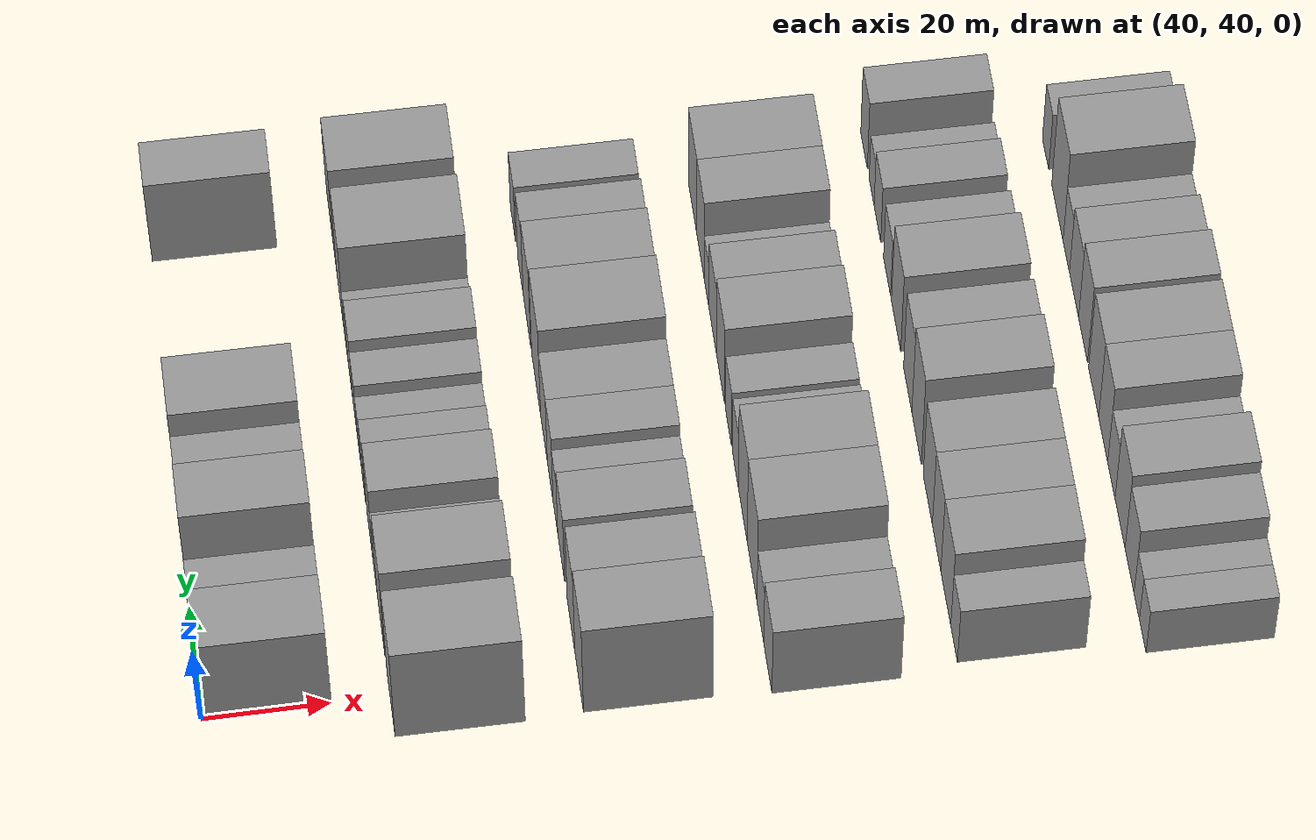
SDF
<sdf version="1.6">
 <world name="default">
  <model name="building_62">
   <static>1</static>
   <pose>50.0000 45.1729 0 0.000000 0.000000 0.000000</pose>
   <link name="link">
    <pose>0 0 10.50 0 0 0</pose>
    <collision name="collision"><geometry><box><size>20.0000 10.4034 21.0000</size></box></geometry></collision>
    <visual name="visual">
     <cast_shadows>0</cast_shadows>
     <geometry><box><size>20.0000 10.4034 21.0000</size></box></geometry>
     <material>
      <script>
       <uri>model://grey_wall/materials/scripts</uri>
       <uri>model://grey_wall/materials/textures</uri>
       <name>vrc/grey_wall</name>
      </script>
     </material>
    </visual>
   </link>
  </model>
  <model name="building_63">
   <static>1</static>
   <pose>50.0000 56.3753 0 0.000000 0.000000 0.000000</pose>
   <link name="link">
    <pose>0 0 7.50 0 0 0</pose>
    <collision name="collision"><geometry><box><size>20.0000 6.0014 15.0000</size></box></geometry></collision>
    <visual name="visual">
     <cast_shadows>0</cast_shadows>
     <geometry><box><size>20.0000 6.0014 15.0000</size></box></geometry>
     <material>
      <script>
       <uri>model://grey_wall/materials/scripts</uri>
       <uri>model://grey_wall/materials/textures</uri>
       <name>vrc/grey_wall</name>
      </script>
     </material>
    </visual>
   </link>
  </model>
  <model name="building_64">
   <static>1</static>
   <pose>50.0000 66.2069 0 0.000000 0.000000 0.000000</pose>
   <link name="link">
    <pose>0 0 12.00 0 0 0</pose>
    <collision name="collision"><geometry><box><size>20.0000 9.6620 24.0000</size></box></geometry></collision>
    <visual name="visual">
     <cast_shadows>0</cast_shadows>
     <geometry><box><size>20.0000 9.6620 24.0000</size></box></geometry>
     <material>
      <script>
       <uri>model://grey_wall/materials/scripts</uri>
       <uri>model://grey_wall/materials/textures</uri>
       <name>vrc/grey_wall</name>
      </script>
     </material>
    </visual>
   </link>
  </model>
  <model name="building_65">
   <static>1</static>
   <pose>50.0000 75.9701 0 0.000000 0.000000 0.000000</pose>
   <link name="link">
    <pose>0 0 9.00 0 0 0</pose>
    <collision name="collision"><geometry><box><size>20.0000 7.8644 18.0000</size></box></geometry></collision>
    <visual name="visual">
     <cast_shadows>0</cast_shadows>
     <geometry><box><size>20.0000 7.8644 18.0000</size></box></geometry>
     <material>
      <script>
       <uri>model://grey_wall/materials/scripts</uri>
       <uri>model://grey_wall/materials/textures</uri>
       <name>vrc/grey_wall</name>
      </script>
     </material>
    </visual>
   </link>
  </model>
  <model name="building_66">
   <static>1</static>
   <pose>50.0000 85.2618 0 0.000000 0.000000 0.000000</pose>
   <link name="link">
    <pose>0 0 12.00 0 0 0</pose>
    <collision name="collision"><geometry><box><size>20.0000 10.7190 24.0000</size></box></geometry></collision>
    <visual name="visual">
     <cast_shadows>0</cast_shadows>
     <geometry><box><size>20.0000 10.7190 24.0000</size></box></geometry>
     <material>
      <script>
       <uri>model://grey_wall/materials/scripts</uri>
       <uri>model://grey_wall/materials/textures</uri>
       <name>vrc/grey_wall</name>
      </script>
     </material>
    </visual>
   </link>
  </model>
  <model name="building_67">
   <static>1</static>
   <pose>50.0000 129.2754 0 0.000000 0.000000 0.000000</pose>
   <link name="link">
    <pose>0 0 10.50 0 0 0</pose>
    <collision name="collision"><geometry><box><size>20.0000 8.4361 21.0000</size></box></geometry></collision>
    <visual name="visual">
     <cast_shadows>0</cast_shadows>
     <geometry><box><size>20.0000 8.4361 21.0000</size></box></geometry>
     <material>
      <script>
       <uri>model://grey_wall/materials/scripts</uri>
       <uri>model://grey_wall/materials/textures</uri>
       <name>vrc/grey_wall</name>
      </script>
     </material>
    </visual>
   </link>
  </model>
  <model name="building_174">
   <static>1</static>
   <pose>79.0000 38.6088 0 0.000000 0.000000 0.000000</pose>
   <link name="link">
    <pose>0 0 12.00 0 0 0</pose>
    <collision name="collision"><geometry><box><size>20.0000 11.4685 24.0000</size></box></geometry></collision>
    <visual name="visual">
     <cast_shadows>0</cast_shadows>
     <geometry><box><size>20.0000 11.4685 24.0000</size></box></geometry>
     <material>
      <script>
       <uri>model://grey_wall/materials/scripts</uri>
       <uri>model://grey_wall/materials/textures</uri>
       <name>vrc/grey_wall</name>
      </script>
     </material>
    </visual>
   </link>
  </model>
  <model name="building_175">
   <static>1</static>
   <pose>79.0000 52.6056 0 0.000000 0.000000 0.000000</pose>
   <link name="link">
    <pose>0 0 12.00 0 0 0</pose>
    <collision name="collision"><geometry><box><size>20.0000 10.5251 24.0000</size></box></geometry></collision>
    <visual name="visual">
     <cast_shadows>0</cast_shadows>
     <geometry><box><size>20.0000 10.5251 24.0000</size></box></geometry>
     <material>
      <script>
       <uri>model://grey_wall/materials/scripts</uri>
       <uri>model://grey_wall/materials/textures</uri>
       <name>vrc/grey_wall</name>
      </script>
     </material>
    </visual>
   </link>
  </model>
  <model name="building_176">
   <static>1</static>
   <pose>79.0000 60.9086 0 0.000000 0.000000 0.000000</pose>
   <link name="link">
    <pose>0 0 7.50 0 0 0</pose>
    <collision name="collision"><geometry><box><size>20.0000 6.0808 15.0000</size></box></geometry></collision>
    <visual name="visual">
     <cast_shadows>0</cast_shadows>
     <geometry><box><size>20.0000 6.0808 15.0000</size></box></geometry>
     <material>
      <script>
       <uri>model://grey_wall/materials/scripts</uri>
       <uri>model://grey_wall/materials/textures</uri>
       <name>vrc/grey_wall</name>
      </script>
     </material>
    </visual>
   </link>
  </model>
  <model name="building_177">
   <static>1</static>
   <pose>79.0000 68.3858 0 0.000000 0.000000 0.000000</pose>
   <link name="link">
    <pose>0 0 10.50 0 0 0</pose>
    <collision name="collision"><geometry><box><size>20.0000 8.8737 21.0000</size></box></geometry></collision>
    <visual name="visual">
     <cast_shadows>0</cast_shadows>
     <geometry><box><size>20.0000 8.8737 21.0000</size></box></geometry>
     <material>
      <script>
       <uri>model://grey_wall/materials/scripts</uri>
       <uri>model://grey_wall/materials/textures</uri>
       <name>vrc/grey_wall</name>
      </script>
     </material>
    </visual>
   </link>
  </model>
  <model name="building_178">
   <static>1</static>
   <pose>79.0000 77.9151 0 0.000000 0.000000 0.000000</pose>
   <link name="link">
    <pose>0 0 7.50 0 0 0</pose>
    <collision name="collision"><geometry><box><size>20.0000 6.1849 15.0000</size></box></geometry></collision>
    <visual name="visual">
     <cast_shadows>0</cast_shadows>
     <geometry><box><size>20.0000 6.1849 15.0000</size></box></geometry>
     <material>
      <script>
       <uri>model://grey_wall/materials/scripts</uri>
       <uri>model://grey_wall/materials/textures</uri>
       <name>vrc/grey_wall</name>
      </script>
     </material>
    </visual>
   </link>
  </model>
  <model name="building_179">
   <static>1</static>
   <pose>79.0000 84.6122 0 0.000000 0.000000 0.000000</pose>
   <link name="link">
    <pose>0 0 6.00 0 0 0</pose>
    <collision name="collision"><geometry><box><size>20.0000 5.2093 12.0000</size></box></geometry></collision>
    <visual name="visual">
     <cast_shadows>0</cast_shadows>
     <geometry><box><size>20.0000 5.2093 12.0000</size></box></geometry>
     <material>
      <script>
       <uri>model://grey_wall/materials/scripts</uri>
       <uri>model://grey_wall/materials/textures</uri>
       <name>vrc/grey_wall</name>
      </script>
     </material>
    </visual>
   </link>
  </model>
  <model name="building_180">
   <static>1</static>
   <pose>79.0000 90.4151 0 0.000000 0.000000 0.000000</pose>
   <link name="link">
    <pose>0 0 7.50 0 0 0</pose>
    <collision name="collision"><geometry><box><size>20.0000 6.3964 15.0000</size></box></geometry></collision>
    <visual name="visual">
     <cast_shadows>0</cast_shadows>
     <geometry><box><size>20.0000 6.3964 15.0000</size></box></geometry>
     <material>
      <script>
       <uri>model://grey_wall/materials/scripts</uri>
       <uri>model://grey_wall/materials/textures</uri>
       <name>vrc/grey_wall</name>
      </script>
     </material>
    </visual>
   </link>
  </model>
  <model name="building_181">
   <static>1</static>
   <pose>79.0000 97.4869 0 0.000000 0.000000 0.000000</pose>
   <link name="link">
    <pose>0 0 9.00 0 0 0</pose>
    <collision name="collision"><geometry><box><size>20.0000 7.7473 18.0000</size></box></geometry></collision>
    <visual name="visual">
     <cast_shadows>0</cast_shadows>
     <geometry><box><size>20.0000 7.7473 18.0000</size></box></geometry>
     <material>
      <script>
       <uri>model://grey_wall/materials/scripts</uri>
       <uri>model://grey_wall/materials/textures</uri>
       <name>vrc/grey_wall</name>
      </script>
     </material>
    </visual>
   </link>
  </model>
  <model name="building_182">
   <static>1</static>
   <pose>79.0000 104.2243 0 0.000000 0.000000 0.000000</pose>
   <link name="link">
    <pose>0 0 6.00 0 0 0</pose>
    <collision name="collision"><geometry><box><size>20.0000 5.7274 12.0000</size></box></geometry></collision>
    <visual name="visual">
     <cast_shadows>0</cast_shadows>
     <geometry><box><size>20.0000 5.7274 12.0000</size></box></geometry>
     <material>
      <script>
       <uri>model://grey_wall/materials/scripts</uri>
       <uri>model://grey_wall/materials/textures</uri>
       <name>vrc/grey_wall</name>
      </script>
     </material>
    </visual>
   </link>
  </model>
  <model name="building_183">
   <static>1</static>
   <pose>79.0000 112.9127 0 0.000000 0.000000 0.000000</pose>
   <link name="link">
    <pose>0 0 12.00 0 0 0</pose>
    <collision name="collision"><geometry><box><size>20.0000 11.6494 24.0000</size></box></geometry></collision>
    <visual name="visual">
     <cast_shadows>0</cast_shadows>
     <geometry><box><size>20.0000 11.6494 24.0000</size></box></geometry>
     <material>
      <script>
       <uri>model://grey_wall/materials/scripts</uri>
       <uri>model://grey_wall/materials/textures</uri>
       <name>vrc/grey_wall</name>
      </script>
     </material>
    </visual>
   </link>
  </model>
  <model name="building_184">
   <static>1</static>
   <pose>79.0000 121.3632 0 0.000000 0.000000 0.000000</pose>
   <link name="link">
    <pose>0 0 6.00 0 0 0</pose>
    <collision name="collision"><geometry><box><size>20.0000 5.2517 12.0000</size></box></geometry></collision>
    <visual name="visual">
     <cast_shadows>0</cast_shadows>
     <geometry><box><size>20.0000 5.2517 12.0000</size></box></geometry>
     <material>
      <script>
       <uri>model://grey_wall/materials/scripts</uri>
       <uri>model://grey_wall/materials/textures</uri>
       <name>vrc/grey_wall</name>
      </script>
     </material>
    </visual>
   </link>
  </model>
  <model name="building_185">
   <static>1</static>
   <pose>79.0000 129.2382 0 0.000000 0.000000 0.000000</pose>
   <link name="link">
    <pose>0 0 10.50 0 0 0</pose>
    <collision name="collision"><geometry><box><size>20.0000 10.4982 21.0000</size></box></geometry></collision>
    <visual name="visual">
     <cast_shadows>0</cast_shadows>
     <geometry><box><size>20.0000 10.4982 21.0000</size></box></geometry>
     <material>
      <script>
       <uri>model://grey_wall/materials/scripts</uri>
       <uri>model://grey_wall/materials/textures</uri>
       <name>vrc/grey_wall</name>
      </script>
     </material>
    </visual>
   </link>
  </model>
  <model name="building_287">
   <static>1</static>
   <pose>108.0000 38.6370 0 0.000000 0.000000 0.000000</pose>
   <link name="link">
    <pose>0 0 12.00 0 0 0</pose>
    <collision name="collision"><geometry><box><size>20.0000 10.6828 24.0000</size></box></geometry></collision>
    <visual name="visual">
     <cast_shadows>0</cast_shadows>
     <geometry><box><size>20.0000 10.6828 24.0000</size></box></geometry>
     <material>
      <script>
       <uri>model://grey_wall/materials/scripts</uri>
       <uri>model://grey_wall/materials/textures</uri>
       <name>vrc/grey_wall</name>
      </script>
     </material>
    </visual>
   </link>
  </model>
  <model name="building_288">
   <static>1</static>
   <pose>108.0000 48.8752 0 0.000000 0.000000 0.000000</pose>
   <link name="link">
    <pose>0 0 10.50 0 0 0</pose>
    <collision name="collision"><geometry><box><size>20.0000 9.7936 21.0000</size></box></geometry></collision>
    <visual name="visual">
     <cast_shadows>0</cast_shadows>
     <geometry><box><size>20.0000 9.7936 21.0000</size></box></geometry>
     <material>
      <script>
       <uri>model://grey_wall/materials/scripts</uri>
       <uri>model://grey_wall/materials/textures</uri>
       <name>vrc/grey_wall</name>
      </script>
     </material>
    </visual>
   </link>
  </model>
  <model name="building_289">
   <static>1</static>
   <pose>108.0000 61.1291 0 0.000000 0.000000 0.000000</pose>
   <link name="link">
    <pose>0 0 9.00 0 0 0</pose>
    <collision name="collision"><geometry><box><size>20.0000 8.7141 18.0000</size></box></geometry></collision>
    <visual name="visual">
     <cast_shadows>0</cast_shadows>
     <geometry><box><size>20.0000 8.7141 18.0000</size></box></geometry>
     <material>
      <script>
       <uri>model://grey_wall/materials/scripts</uri>
       <uri>model://grey_wall/materials/textures</uri>
       <name>vrc/grey_wall</name>
      </script>
     </material>
    </visual>
   </link>
  </model>
  <model name="building_290">
   <static>1</static>
   <pose>108.0000 68.4956 0 0.000000 0.000000 0.000000</pose>
   <link name="link">
    <pose>0 0 7.50 0 0 0</pose>
    <collision name="collision"><geometry><box><size>20.0000 6.0188 15.0000</size></box></geometry></collision>
    <visual name="visual">
     <cast_shadows>0</cast_shadows>
     <geometry><box><size>20.0000 6.0188 15.0000</size></box></geometry>
     <material>
      <script>
       <uri>model://grey_wall/materials/scripts</uri>
       <uri>model://grey_wall/materials/textures</uri>
       <name>vrc/grey_wall</name>
      </script>
     </material>
    </visual>
   </link>
  </model>
  <model name="building_291">
   <static>1</static>
   <pose>108.0000 75.1930 0 0.000000 0.000000 0.000000</pose>
   <link name="link">
    <pose>0 0 9.00 0 0 0</pose>
    <collision name="collision"><geometry><box><size>20.0000 7.3761 18.0000</size></box></geometry></collision>
    <visual name="visual">
     <cast_shadows>0</cast_shadows>
     <geometry><box><size>20.0000 7.3761 18.0000</size></box></geometry>
     <material>
      <script>
       <uri>model://grey_wall/materials/scripts</uri>
       <uri>model://grey_wall/materials/textures</uri>
       <name>vrc/grey_wall</name>
      </script>
     </material>
    </visual>
   </link>
  </model>
  <model name="building_292">
   <static>1</static>
   <pose>108.0000 83.2609 0 0.000000 0.000000 0.000000</pose>
   <link name="link">
    <pose>0 0 9.00 0 0 0</pose>
    <collision name="collision"><geometry><box><size>20.0000 8.7597 18.0000</size></box></geometry></collision>
    <visual name="visual">
     <cast_shadows>0</cast_shadows>
     <geometry><box><size>20.0000 8.7597 18.0000</size></box></geometry>
     <material>
      <script>
       <uri>model://grey_wall/materials/scripts</uri>
       <uri>model://grey_wall/materials/textures</uri>
       <name>vrc/grey_wall</name>
      </script>
     </material>
    </visual>
   </link>
  </model>
  <model name="building_293">
   <static>1</static>
   <pose>108.0000 93.4723 0 0.000000 0.000000 0.000000</pose>
   <link name="link">
    <pose>0 0 12.00 0 0 0</pose>
    <collision name="collision"><geometry><box><size>20.0000 11.6630 24.0000</size></box></geometry></collision>
    <visual name="visual">
     <cast_shadows>0</cast_shadows>
     <geometry><box><size>20.0000 11.6630 24.0000</size></box></geometry>
     <material>
      <script>
       <uri>model://grey_wall/materials/scripts</uri>
       <uri>model://grey_wall/materials/textures</uri>
       <name>vrc/grey_wall</name>
      </script>
     </material>
    </visual>
   </link>
  </model>
  <model name="building_294">
   <static>1</static>
   <pose>108.0000 105.3740 0 0.000000 0.000000 0.000000</pose>
   <link name="link">
    <pose>0 0 10.50 0 0 0</pose>
    <collision name="collision"><geometry><box><size>20.0000 10.1405 21.0000</size></box></geometry></collision>
    <visual name="visual">
     <cast_shadows>0</cast_shadows>
     <geometry><box><size>20.0000 10.1405 21.0000</size></box></geometry>
     <material>
      <script>
       <uri>model://grey_wall/materials/scripts</uri>
       <uri>model://grey_wall/materials/textures</uri>
       <name>vrc/grey_wall</name>
      </script>
     </material>
    </visual>
   </link>
  </model>
  <model name="building_295">
   <static>1</static>
   <pose>108.0000 114.2817 0 0.000000 0.000000 0.000000</pose>
   <link name="link">
    <pose>0 0 9.00 0 0 0</pose>
    <collision name="collision"><geometry><box><size>20.0000 7.6747 18.0000</size></box></geometry></collision>
    <visual name="visual">
     <cast_shadows>0</cast_shadows>
     <geometry><box><size>20.0000 7.6747 18.0000</size></box></geometry>
     <material>
      <script>
       <uri>model://grey_wall/materials/scripts</uri>
       <uri>model://grey_wall/materials/textures</uri>
       <name>vrc/grey_wall</name>
      </script>
     </material>
    </visual>
   </link>
  </model>
  <model name="building_296">
   <static>1</static>
   <pose>108.0000 124.5735 0 0.000000 0.000000 0.000000</pose>
   <link name="link">
    <pose>0 0 7.50 0 0 0</pose>
    <collision name="collision"><geometry><box><size>20.0000 6.9089 15.0000</size></box></geometry></collision>
    <visual name="visual">
     <cast_shadows>0</cast_shadows>
     <geometry><box><size>20.0000 6.9089 15.0000</size></box></geometry>
     <material>
      <script>
       <uri>model://grey_wall/materials/scripts</uri>
       <uri>model://grey_wall/materials/textures</uri>
       <name>vrc/grey_wall</name>
      </script>
     </material>
    </visual>
   </link>
  </model>
  <model name="building_395">
   <static>1</static>
   <pose>137.0000 37.2032 0 0.000000 0.000000 0.000000</pose>
   <link name="link">
    <pose>0 0 9.00 0 0 0</pose>
    <collision name="collision"><geometry><box><size>20.0000 8.9308 18.0000</size></box></geometry></collision>
    <visual name="visual">
     <cast_shadows>0</cast_shadows>
     <geometry><box><size>20.0000 8.9308 18.0000</size></box></geometry>
     <material>
      <script>
       <uri>model://grey_wall/materials/scripts</uri>
       <uri>model://grey_wall/materials/textures</uri>
       <name>vrc/grey_wall</name>
      </script>
     </material>
    </visual>
   </link>
  </model>
  <model name="building_396">
   <static>1</static>
   <pose>137.0000 45.4095 0 0.000000 0.000000 0.000000</pose>
   <link name="link">
    <pose>0 0 7.50 0 0 0</pose>
    <collision name="collision"><geometry><box><size>20.0000 7.4818 15.0000</size></box></geometry></collision>
    <visual name="visual">
     <cast_shadows>0</cast_shadows>
     <geometry><box><size>20.0000 7.4818 15.0000</size></box></geometry>
     <material>
      <script>
       <uri>model://grey_wall/materials/scripts</uri>
       <uri>model://grey_wall/materials/textures</uri>
       <name>vrc/grey_wall</name>
      </script>
     </material>
    </visual>
   </link>
  </model>
  <model name="building_397">
   <static>1</static>
   <pose>137.0000 54.6229 0 0.000000 0.000000 0.000000</pose>
   <link name="link">
    <pose>0 0 12.00 0 0 0</pose>
    <collision name="collision"><geometry><box><size>20.0000 10.9449 24.0000</size></box></geometry></collision>
    <visual name="visual">
     <cast_shadows>0</cast_shadows>
     <geometry><box><size>20.0000 10.9449 24.0000</size></box></geometry>
     <material>
      <script>
       <uri>model://grey_wall/materials/scripts</uri>
       <uri>model://grey_wall/materials/textures</uri>
       <name>vrc/grey_wall</name>
      </script>
     </material>
    </visual>
   </link>
  </model>
  <model name="building_398">
   <static>1</static>
   <pose>137.0000 65.1071 0 0.000000 0.000000 0.000000</pose>
   <link name="link">
    <pose>0 0 12.00 0 0 0</pose>
    <collision name="collision"><geometry><box><size>20.0000 10.0236 24.0000</size></box></geometry></collision>
    <visual name="visual">
     <cast_shadows>0</cast_shadows>
     <geometry><box><size>20.0000 10.0236 24.0000</size></box></geometry>
     <material>
      <script>
       <uri>model://grey_wall/materials/scripts</uri>
       <uri>model://grey_wall/materials/textures</uri>
       <name>vrc/grey_wall</name>
      </script>
     </material>
    </visual>
   </link>
  </model>
  <model name="building_399">
   <static>1</static>
   <pose>137.0000 73.5882 0 0.000000 0.000000 0.000000</pose>
   <link name="link">
    <pose>0 0 7.50 0 0 0</pose>
    <collision name="collision"><geometry><box><size>20.0000 6.9386 15.0000</size></box></geometry></collision>
    <visual name="visual">
     <cast_shadows>0</cast_shadows>
     <geometry><box><size>20.0000 6.9386 15.0000</size></box></geometry>
     <material>
      <script>
       <uri>model://grey_wall/materials/scripts</uri>
       <uri>model://grey_wall/materials/textures</uri>
       <name>vrc/grey_wall</name>
      </script>
     </material>
    </visual>
   </link>
  </model>
  <model name="building_400">
   <static>1</static>
   <pose>137.0000 81.5265 0 0.000000 0.000000 0.000000</pose>
   <link name="link">
    <pose>0 0 7.50 0 0 0</pose>
    <collision name="collision"><geometry><box><size>20.0000 6.9379 15.0000</size></box></geometry></collision>
    <visual name="visual">
     <cast_shadows>0</cast_shadows>
     <geometry><box><size>20.0000 6.9379 15.0000</size></box></geometry>
     <material>
      <script>
       <uri>model://grey_wall/materials/scripts</uri>
       <uri>model://grey_wall/materials/textures</uri>
       <name>vrc/grey_wall</name>
      </script>
     </material>
    </visual>
   </link>
  </model>
  <model name="building_401">
   <static>1</static>
   <pose>137.0000 90.7979 0 0.000000 0.000000 0.000000</pose>
   <link name="link">
    <pose>0 0 10.50 0 0 0</pose>
    <collision name="collision"><geometry><box><size>20.0000 9.6050 21.0000</size></box></geometry></collision>
    <visual name="visual">
     <cast_shadows>0</cast_shadows>
     <geometry><box><size>20.0000 9.6050 21.0000</size></box></geometry>
     <material>
      <script>
       <uri>model://grey_wall/materials/scripts</uri>
       <uri>model://grey_wall/materials/textures</uri>
       <name>vrc/grey_wall</name>
      </script>
     </material>
    </visual>
   </link>
  </model>
  <model name="building_402">
   <static>1</static>
   <pose>137.0000 99.9290 0 0.000000 0.000000 0.000000</pose>
   <link name="link">
    <pose>0 0 9.00 0 0 0</pose>
    <collision name="collision"><geometry><box><size>20.0000 8.6572 18.0000</size></box></geometry></collision>
    <visual name="visual">
     <cast_shadows>0</cast_shadows>
     <geometry><box><size>20.0000 8.6572 18.0000</size></box></geometry>
     <material>
      <script>
       <uri>model://grey_wall/materials/scripts</uri>
       <uri>model://grey_wall/materials/textures</uri>
       <name>vrc/grey_wall</name>
      </script>
     </material>
    </visual>
   </link>
  </model>
  <model name="building_403">
   <static>1</static>
   <pose>137.0000 107.1037 0 0.000000 0.000000 0.000000</pose>
   <link name="link">
    <pose>0 0 6.00 0 0 0</pose>
    <collision name="collision"><geometry><box><size>20.0000 5.6922 12.0000</size></box></geometry></collision>
    <visual name="visual">
     <cast_shadows>0</cast_shadows>
     <geometry><box><size>20.0000 5.6922 12.0000</size></box></geometry>
     <material>
      <script>
       <uri>model://grey_wall/materials/scripts</uri>
       <uri>model://grey_wall/materials/textures</uri>
       <name>vrc/grey_wall</name>
      </script>
     </material>
    </visual>
   </link>
  </model>
  <model name="building_404">
   <static>1</static>
   <pose>137.0000 114.2315 0 0.000000 0.000000 0.000000</pose>
   <link name="link">
    <pose>0 0 10.50 0 0 0</pose>
    <collision name="collision"><geometry><box><size>20.0000 8.5635 21.0000</size></box></geometry></collision>
    <visual name="visual">
     <cast_shadows>0</cast_shadows>
     <geometry><box><size>20.0000 8.5635 21.0000</size></box></geometry>
     <material>
      <script>
       <uri>model://grey_wall/materials/scripts</uri>
       <uri>model://grey_wall/materials/textures</uri>
       <name>vrc/grey_wall</name>
      </script>
     </material>
    </visual>
   </link>
  </model>
  <model name="building_405">
   <static>1</static>
   <pose>137.0000 123.5830 0 0.000000 0.000000 0.000000</pose>
   <link name="link">
    <pose>0 0 10.50 0 0 0</pose>
    <collision name="collision"><geometry><box><size>20.0000 10.1394 21.0000</size></box></geometry></collision>
    <visual name="visual">
     <cast_shadows>0</cast_shadows>
     <geometry><box><size>20.0000 10.1394 21.0000</size></box></geometry>
     <material>
      <script>
       <uri>model://grey_wall/materials/scripts</uri>
       <uri>model://grey_wall/materials/textures</uri>
       <name>vrc/grey_wall</name>
      </script>
     </material>
    </visual>
   </link>
  </model>
  <model name="building_509">
   <static>1</static>
   <pose>166.0000 37.6300 0 0.000000 0.000000 0.000000</pose>
   <link name="link">
    <pose>0 0 7.50 0 0 0</pose>
    <collision name="collision"><geometry><box><size>20.0000 6.5539 15.0000</size></box></geometry></collision>
    <visual name="visual">
     <cast_shadows>0</cast_shadows>
     <geometry><box><size>20.0000 6.5539 15.0000</size></box></geometry>
     <material>
      <script>
       <uri>model://grey_wall/materials/scripts</uri>
       <uri>model://grey_wall/materials/textures</uri>
       <name>vrc/grey_wall</name>
      </script>
     </material>
    </visual>
   </link>
  </model>
  <model name="building_510">
   <static>1</static>
   <pose>166.0000 45.8739 0 0.000000 0.000000 0.000000</pose>
   <link name="link">
    <pose>0 0 10.50 0 0 0</pose>
    <collision name="collision"><geometry><box><size>20.0000 9.9338 21.0000</size></box></geometry></collision>
    <visual name="visual">
     <cast_shadows>0</cast_shadows>
     <geometry><box><size>20.0000 9.9338 21.0000</size></box></geometry>
     <material>
      <script>
       <uri>model://grey_wall/materials/scripts</uri>
       <uri>model://grey_wall/materials/textures</uri>
       <name>vrc/grey_wall</name>
      </script>
     </material>
    </visual>
   </link>
  </model>
  <model name="building_511">
   <static>1</static>
   <pose>166.0000 55.1198 0 0.000000 0.000000 0.000000</pose>
   <link name="link">
    <pose>0 0 10.50 0 0 0</pose>
    <collision name="collision"><geometry><box><size>20.0000 8.5581 21.0000</size></box></geometry></collision>
    <visual name="visual">
     <cast_shadows>0</cast_shadows>
     <geometry><box><size>20.0000 8.5581 21.0000</size></box></geometry>
     <material>
      <script>
       <uri>model://grey_wall/materials/scripts</uri>
       <uri>model://grey_wall/materials/textures</uri>
       <name>vrc/grey_wall</name>
      </script>
     </material>
    </visual>
   </link>
  </model>
  <model name="building_512">
   <static>1</static>
   <pose>166.0000 64.0115 0 0.000000 0.000000 0.000000</pose>
   <link name="link">
    <pose>0 0 10.50 0 0 0</pose>
    <collision name="collision"><geometry><box><size>20.0000 9.2253 21.0000</size></box></geometry></collision>
    <visual name="visual">
     <cast_shadows>0</cast_shadows>
     <geometry><box><size>20.0000 9.2253 21.0000</size></box></geometry>
     <material>
      <script>
       <uri>model://grey_wall/materials/scripts</uri>
       <uri>model://grey_wall/materials/textures</uri>
       <name>vrc/grey_wall</name>
      </script>
     </material>
    </visual>
   </link>
  </model>
  <model name="building_513">
   <static>1</static>
   <pose>166.0000 75.4998 0 0.000000 0.000000 0.000000</pose>
   <link name="link">
    <pose>0 0 12.00 0 0 0</pose>
    <collision name="collision"><geometry><box><size>20.0000 9.7514 24.0000</size></box></geometry></collision>
    <visual name="visual">
     <cast_shadows>0</cast_shadows>
     <geometry><box><size>20.0000 9.7514 24.0000</size></box></geometry>
     <material>
      <script>
       <uri>model://grey_wall/materials/scripts</uri>
       <uri>model://grey_wall/materials/textures</uri>
       <name>vrc/grey_wall</name>
      </script>
     </material>
    </visual>
   </link>
  </model>
  <model name="building_514">
   <static>1</static>
   <pose>166.0000 84.6563 0 0.000000 0.000000 0.000000</pose>
   <link name="link">
    <pose>0 0 10.50 0 0 0</pose>
    <collision name="collision"><geometry><box><size>20.0000 8.5615 21.0000</size></box></geometry></collision>
    <visual name="visual">
     <cast_shadows>0</cast_shadows>
     <geometry><box><size>20.0000 8.5615 21.0000</size></box></geometry>
     <material>
      <script>
       <uri>model://grey_wall/materials/scripts</uri>
       <uri>model://grey_wall/materials/textures</uri>
       <name>vrc/grey_wall</name>
      </script>
     </material>
    </visual>
   </link>
  </model>
  <model name="building_515">
   <static>1</static>
   <pose>166.0000 96.8240 0 0.000000 0.000000 0.000000</pose>
   <link name="link">
    <pose>0 0 10.50 0 0 0</pose>
    <collision name="collision"><geometry><box><size>20.0000 9.7738 21.0000</size></box></geometry></collision>
    <visual name="visual">
     <cast_shadows>0</cast_shadows>
     <geometry><box><size>20.0000 9.7738 21.0000</size></box></geometry>
     <material>
      <script>
       <uri>model://grey_wall/materials/scripts</uri>
       <uri>model://grey_wall/materials/textures</uri>
       <name>vrc/grey_wall</name>
      </script>
     </material>
    </visual>
   </link>
  </model>
  <model name="building_516">
   <static>1</static>
   <pose>166.0000 106.4108 0 0.000000 0.000000 0.000000</pose>
   <link name="link">
    <pose>0 0 7.50 0 0 0</pose>
    <collision name="collision"><geometry><box><size>20.0000 7.3998 15.0000</size></box></geometry></collision>
    <visual name="visual">
     <cast_shadows>0</cast_shadows>
     <geometry><box><size>20.0000 7.3998 15.0000</size></box></geometry>
     <material>
      <script>
       <uri>model://grey_wall/materials/scripts</uri>
       <uri>model://grey_wall/materials/textures</uri>
       <name>vrc/grey_wall</name>
      </script>
     </material>
    </visual>
   </link>
  </model>
  <model name="building_517">
   <static>1</static>
   <pose>166.0000 116.7001 0 0.000000 0.000000 0.000000</pose>
   <link name="link">
    <pose>0 0 7.50 0 0 0</pose>
    <collision name="collision"><geometry><box><size>20.0000 7.1788 15.0000</size></box></geometry></collision>
    <visual name="visual">
     <cast_shadows>0</cast_shadows>
     <geometry><box><size>20.0000 7.1788 15.0000</size></box></geometry>
     <material>
      <script>
       <uri>model://grey_wall/materials/scripts</uri>
       <uri>model://grey_wall/materials/textures</uri>
       <name>vrc/grey_wall</name>
      </script>
     </material>
    </visual>
   </link>
  </model>
  <model name="building_518">
   <static>1</static>
   <pose>166.0000 122.9309 0 0.000000 0.000000 0.000000</pose>
   <link name="link">
    <pose>0 0 6.00 0 0 0</pose>
    <collision name="collision"><geometry><box><size>20.0000 5.2829 12.0000</size></box></geometry></collision>
    <visual name="visual">
     <cast_shadows>0</cast_shadows>
     <geometry><box><size>20.0000 5.2829 12.0000</size></box></geometry>
     <material>
      <script>
       <uri>model://grey_wall/materials/scripts</uri>
       <uri>model://grey_wall/materials/textures</uri>
       <name>vrc/grey_wall</name>
      </script>
     </material>
    </visual>
   </link>
  </model>
  <model name="building_519">
   <static>1</static>
   <pose>166.0000 131.1807 0 0.000000 0.000000 0.000000</pose>
   <link name="link">
    <pose>0 0 9.00 0 0 0</pose>
    <collision name="collision"><geometry><box><size>20.0000 7.2167 18.0000</size></box></geometry></collision>
    <visual name="visual">
     <cast_shadows>0</cast_shadows>
     <geometry><box><size>20.0000 7.2167 18.0000</size></box></geometry>
     <material>
      <script>
       <uri>model://grey_wall/materials/scripts</uri>
       <uri>model://grey_wall/materials/textures</uri>
       <name>vrc/grey_wall</name>
      </script>
     </material>
    </visual>
   </link>
  </model>
  <model name="building_616">
   <static>1</static>
   <pose>195.0000 35.1229 0 0.000000 0.000000 0.000000</pose>
   <link name="link">
    <pose>0 0 6.00 0 0 0</pose>
    <collision name="collision"><geometry><box><size>20.0000 5.9237 12.0000</size></box></geometry></collision>
    <visual name="visual">
     <cast_shadows>0</cast_shadows>
     <geometry><box><size>20.0000 5.9237 12.0000</size></box></geometry>
     <material>
      <script>
       <uri>model://grey_wall/materials/scripts</uri>
       <uri>model://grey_wall/materials/textures</uri>
       <name>vrc/grey_wall</name>
      </script>
     </material>
    </visual>
   </link>
  </model>
  <model name="building_617">
   <static>1</static>
   <pose>195.0000 40.5064 0 0.000000 0.000000 0.000000</pose>
   <link name="link">
    <pose>0 0 6.00 0 0 0</pose>
    <collision name="collision"><geometry><box><size>20.0000 4.8431 12.0000</size></box></geometry></collision>
    <visual name="visual">
     <cast_shadows>0</cast_shadows>
     <geometry><box><size>20.0000 4.8431 12.0000</size></box></geometry>
     <material>
      <script>
       <uri>model://grey_wall/materials/scripts</uri>
       <uri>model://grey_wall/materials/textures</uri>
       <name>vrc/grey_wall</name>
      </script>
     </material>
    </visual>
   </link>
  </model>
  <model name="building_618">
   <static>1</static>
   <pose>195.0000 47.0125 0 0.000000 0.000000 0.000000</pose>
   <link name="link">
    <pose>0 0 9.00 0 0 0</pose>
    <collision name="collision"><geometry><box><size>20.0000 8.1691 18.0000</size></box></geometry></collision>
    <visual name="visual">
     <cast_shadows>0</cast_shadows>
     <geometry><box><size>20.0000 8.1691 18.0000</size></box></geometry>
     <material>
      <script>
       <uri>model://grey_wall/materials/scripts</uri>
       <uri>model://grey_wall/materials/textures</uri>
       <name>vrc/grey_wall</name>
      </script>
     </material>
    </visual>
   </link>
  </model>
  <model name="building_619">
   <static>1</static>
   <pose>195.0000 55.6974 0 0.000000 0.000000 0.000000</pose>
   <link name="link">
    <pose>0 0 10.50 0 0 0</pose>
    <collision name="collision"><geometry><box><size>20.0000 9.2008 21.0000</size></box></geometry></collision>
    <visual name="visual">
     <cast_shadows>0</cast_shadows>
     <geometry><box><size>20.0000 9.2008 21.0000</size></box></geometry>
     <material>
      <script>
       <uri>model://grey_wall/materials/scripts</uri>
       <uri>model://grey_wall/materials/textures</uri>
       <name>vrc/grey_wall</name>
      </script>
     </material>
    </visual>
   </link>
  </model>
  <model name="building_620">
   <static>1</static>
   <pose>195.0000 63.6844 0 0.000000 0.000000 0.000000</pose>
   <link name="link">
    <pose>0 0 7.50 0 0 0</pose>
    <collision name="collision"><geometry><box><size>20.0000 6.7731 15.0000</size></box></geometry></collision>
    <visual name="visual">
     <cast_shadows>0</cast_shadows>
     <geometry><box><size>20.0000 6.7731 15.0000</size></box></geometry>
     <material>
      <script>
       <uri>model://grey_wall/materials/scripts</uri>
       <uri>model://grey_wall/materials/textures</uri>
       <name>vrc/grey_wall</name>
      </script>
     </material>
    </visual>
   </link>
  </model>
  <model name="building_621">
   <static>1</static>
   <pose>195.0000 71.2854 0 0.000000 0.000000 0.000000</pose>
   <link name="link">
    <pose>0 0 10.50 0 0 0</pose>
    <collision name="collision"><geometry><box><size>20.0000 8.4290 21.0000</size></box></geometry></collision>
    <visual name="visual">
     <cast_shadows>0</cast_shadows>
     <geometry><box><size>20.0000 8.4290 21.0000</size></box></geometry>
     <material>
      <script>
       <uri>model://grey_wall/materials/scripts</uri>
       <uri>model://grey_wall/materials/textures</uri>
       <name>vrc/grey_wall</name>
      </script>
     </material>
    </visual>
   </link>
  </model>
  <model name="building_622">
   <static>1</static>
   <pose>195.0000 80.2400 0 0.000000 0.000000 0.000000</pose>
   <link name="link">
    <pose>0 0 10.50 0 0 0</pose>
    <collision name="collision"><geometry><box><size>20.0000 9.4801 21.0000</size></box></geometry></collision>
    <visual name="visual">
     <cast_shadows>0</cast_shadows>
     <geometry><box><size>20.0000 9.4801 21.0000</size></box></geometry>
     <material>
      <script>
       <uri>model://grey_wall/materials/scripts</uri>
       <uri>model://grey_wall/materials/textures</uri>
       <name>vrc/grey_wall</name>
      </script>
     </material>
    </visual>
   </link>
  </model>
  <model name="building_623">
   <static>1</static>
   <pose>195.0000 90.2486 0 0.000000 0.000000 0.000000</pose>
   <link name="link">
    <pose>0 0 10.50 0 0 0</pose>
    <collision name="collision"><geometry><box><size>20.0000 8.5371 21.0000</size></box></geometry></collision>
    <visual name="visual">
     <cast_shadows>0</cast_shadows>
     <geometry><box><size>20.0000 8.5371 21.0000</size></box></geometry>
     <material>
      <script>
       <uri>model://grey_wall/materials/scripts</uri>
       <uri>model://grey_wall/materials/textures</uri>
       <name>vrc/grey_wall</name>
      </script>
     </material>
    </visual>
   </link>
  </model>
  <model name="building_624">
   <static>1</static>
   <pose>195.0000 98.9042 0 0.000000 0.000000 0.000000</pose>
   <link name="link">
    <pose>0 0 9.00 0 0 0</pose>
    <collision name="collision"><geometry><box><size>20.0000 8.7741 18.0000</size></box></geometry></collision>
    <visual name="visual">
     <cast_shadows>0</cast_shadows>
     <geometry><box><size>20.0000 8.7741 18.0000</size></box></geometry>
     <material>
      <script>
       <uri>model://grey_wall/materials/scripts</uri>
       <uri>model://grey_wall/materials/textures</uri>
       <name>vrc/grey_wall</name>
      </script>
     </material>
    </visual>
   </link>
  </model>
  <model name="building_625">
   <static>1</static>
   <pose>195.0000 106.3523 0 0.000000 0.000000 0.000000</pose>
   <link name="link">
    <pose>0 0 7.50 0 0 0</pose>
    <collision name="collision"><geometry><box><size>20.0000 6.1221 15.0000</size></box></geometry></collision>
    <visual name="visual">
     <cast_shadows>0</cast_shadows>
     <geometry><box><size>20.0000 6.1221 15.0000</size></box></geometry>
     <material>
      <script>
       <uri>model://grey_wall/materials/scripts</uri>
       <uri>model://grey_wall/materials/textures</uri>
       <name>vrc/grey_wall</name>
      </script>
     </material>
    </visual>
   </link>
  </model>
  <model name="building_626">
   <static>1</static>
   <pose>195.0000 114.9753 0 0.000000 0.000000 0.000000</pose>
   <link name="link">
    <pose>0 0 12.00 0 0 0</pose>
    <collision name="collision"><geometry><box><size>20.0000 11.1238 24.0000</size></box></geometry></collision>
    <visual name="visual">
     <cast_shadows>0</cast_shadows>
     <geometry><box><size>20.0000 11.1238 24.0000</size></box></geometry>
     <material>
      <script>
       <uri>model://grey_wall/materials/scripts</uri>
       <uri>model://grey_wall/materials/textures</uri>
       <name>vrc/grey_wall</name>
      </script>
     </material>
    </visual>
   </link>
  </model>
  <model name="building_627">
   <static>1</static>
   <pose>195.0000 126.5976 0 0.000000 0.000000 0.000000</pose>
   <link name="link">
    <pose>0 0 7.50 0 0 0</pose>
    <collision name="collision"><geometry><box><size>20.0000 6.1207 15.0000</size></box></geometry></collision>
    <visual name="visual">
     <cast_shadows>0</cast_shadows>
     <geometry><box><size>20.0000 6.1207 15.0000</size></box></geometry>
     <material>
      <script>
       <uri>model://grey_wall/materials/scripts</uri>
       <uri>model://grey_wall/materials/textures</uri>
       <name>vrc/grey_wall</name>
      </script>
     </material>
    </visual>
   </link>
  </model>
 </world>
</sdf>
